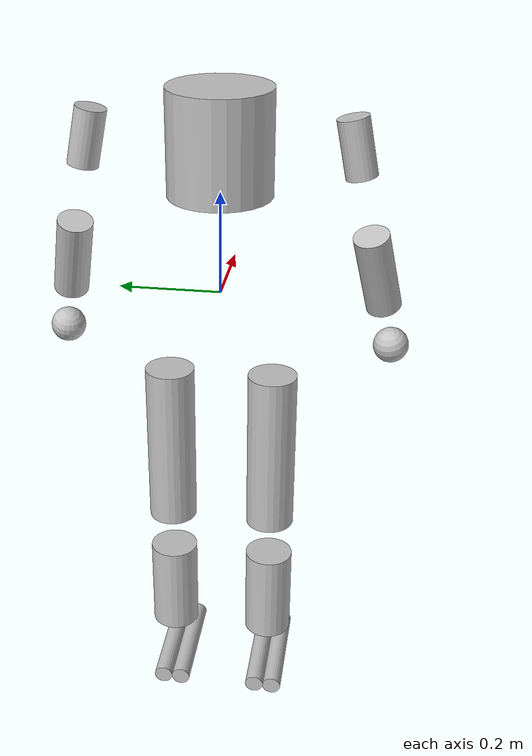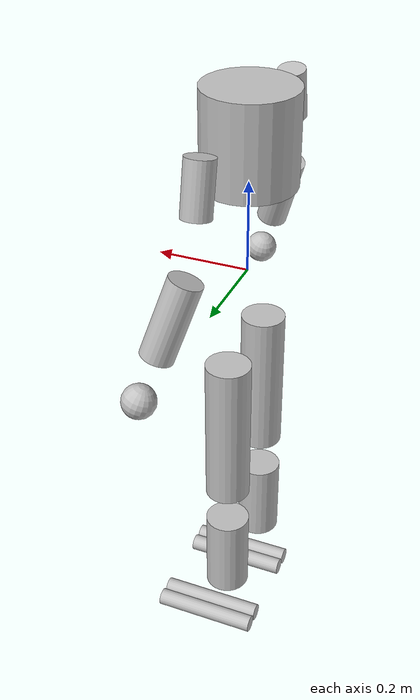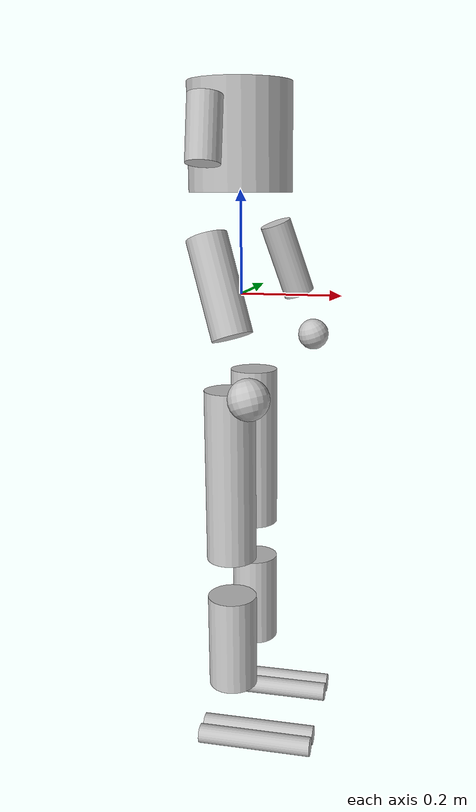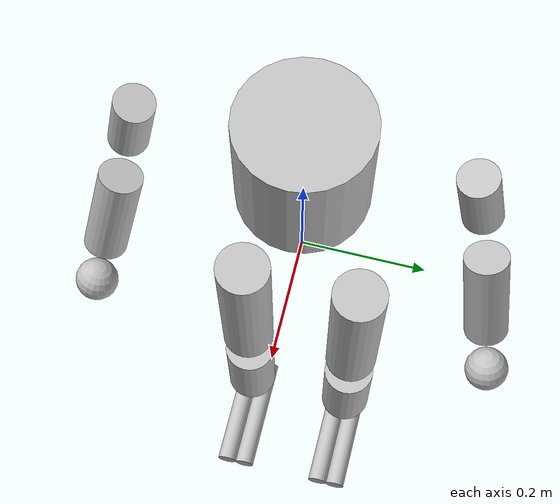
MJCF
<?xml version='1.0' encoding='utf-8'?>
<mujoco model="GR1T2Simple">
  <compiler angle="radian" boundmass="1e-06" boundinertia="1e-08" meshdir=".." />
  <worldbody>
    <body name="base">
      <joint type="free" />
      <geom size="0.1 0.1" pos="0 0 0.2945" type="cylinder" rgba="0.75294 0.75294 0.75294 1" />
      <geom size="0.03 0.055" pos="0 0.24822 0.294998" quat="0.995007 0.099801 0 0" type="cylinder" rgba="0.75294 0.75294 0.75294 1" />
      <geom size="0.035 0.085" pos="0.0356099 0.300163 0.0464975" quat="0.983835 0.0986803 -0.148692 -0.0149141" type="cylinder" rgba="0.75294 0.75294 0.75294 1" />
      <geom size="0.036" pos="0.0920778 0.337728 -0.132146" quat="0.983835 0.0986803 -0.148692 -0.0149141" rgba="0.75294 0.75294 0.75294 1" />
      <geom size="0.03 0.055" pos="0 -0.247912 0.294668" quat="0.995001 -0.0998644 0 0" type="cylinder" rgba="0.75294 0.75294 0.75294 1" />
      <geom size="0.035 0.085" pos="0.0356102 -0.298349 0.0460846" quat="0.983828 -0.098743 -0.148691 0.0149236" type="cylinder" rgba="0.75294 0.75294 0.75294 1" />
      <geom size="0.036" pos="0.0920795 -0.334627 -0.132824" quat="0.983828 -0.098743 -0.148691 0.0149236" rgba="0.75294 0.75294 0.75294 1" />
      <body name="l_thigh_roll" pos="-0.048 0.105 -0.0575">
        <inertial pos="0.042108 5.3388e-05 0.0025561" quat="0.000951199 0.75733 0.00226652 0.653028" mass="1.24084" diaginertia="0.00139721 0.00109616 0.000971712" />
        <joint name="l_hip_roll" pos="0 0 0" axis="1 0 0" range="-0.09 0.79" actuatorfrcrange="-48 48" />
        <body name="l_thigh_yaw" pos="0.048 0 -0.0305">
          <inertial pos="-0.00036975 0.048008 -0.10263" quat="0.703435 0.0400874 -0.0739438 0.705766" mass="3.9947" diaginertia="0.0141906 0.00974878 0.00712104" />
          <joint name="l_hip_yaw" pos="0 0 0" axis="0 0 1" range="-0.7 0.7" actuatorfrcrange="-66 66" />
          <body name="l_thigh_pitch" pos="0 0 -0.11">
            <inertial pos="0.0023293 -0.018978 -0.09346" quat="0.709706 0.0401023 -0.0585618 0.700914" mass="6.1575" diaginertia="0.0860379 0.0814364 0.0141615" />
            <joint name="l_hip_pitch" pos="0 0 0" axis="0 1 0" range="-1.75 0.7" actuatorfrcrange="-225 225" />
            <geom size="0.05 0.175" pos="0 0 -0.15" type="cylinder" rgba="0.75294 0.75294 0.75294 1" />
            <body name="l_shank_pitch" pos="0 0 -0.359995">
              <inertial pos="0.0026504 0.0058504 -0.12267" quat="0.668844 0.0129955 -0.000303131 0.743289" mass="2.4196" diaginertia="0.0211876 0.0209532 0.00159024" />
              <joint name="l_knee_pitch" pos="0 0 0" axis="0 1 0" range="-0.09 1.92" actuatorfrcrange="-225 225" />
              <geom size="0.05 0.1" pos="0 0 -0.15" type="cylinder" rgba="0.75294 0.75294 0.75294 1" />
              <body name="l_foot_pitch" pos="0 0 -0.34">
                <inertial pos="0.0323551 0.000248254 -0.0339204" quat="0.000783508 0.734635 0.000906743 0.678461" mass="0.640958" diaginertia="0.00289138 0.00270716 0.000450323" />
                <joint name="l_ankle_pitch" pos="0 0 0" axis="0 1 0" range="-1.05 0.52" actuatorfrcrange="-15 15" />
                <geom name="l_foot_1" size="0.02 0.12" pos="0.05 0.02 -0.035" quat="0.707105 0 0.707108 0" type="cylinder" rgba="0.75294 0.75294 0.75294 1" />
                <geom name="l_foot_2" size="0.02 0.12" pos="0.05 -0.02 -0.035" quat="0.707105 0 0.707108 0" type="cylinder" rgba="0.75294 0.75294 0.75294 1" />
              </body>
            </body>
          </body>
        </body>
      </body>
      <body name="r_thigh_roll" pos="-0.048 -0.105 -0.0575">
        <inertial pos="0.042109 -5.244e-05 0.0025563" quat="-0.000958227 0.757316 -0.00228287 0.653044" mass="1.2408" diaginertia="0.00139725 0.00109626 0.000971768" />
        <joint name="r_hip_roll" pos="0 0 0" axis="1 0 0" range="-0.79 0.09" actuatorfrcrange="-48 48" />
        <body name="r_thigh_yaw" pos="0.048 0 -0.0305">
          <inertial pos="-0.000369 -0.048008 -0.10263" quat="0.705764 -0.0739587 0.0400772 0.703435" mass="3.9947" diaginertia="0.0141904 0.00974868 0.00712096" />
          <joint name="r_hip_yaw" pos="0 0 0" axis="0 0 1" range="-0.7 0.7" actuatorfrcrange="-66 66" />
          <body name="r_thigh_pitch" pos="0 0 -0.11">
            <inertial pos="0.0023609 0.019072 -0.093254" quat="0.70026 -0.0586384 0.040433 0.710326" mass="6.1575" diaginertia="0.0861752 0.0815583 0.0142018" />
            <joint name="r_hip_pitch" pos="0 0 0" axis="0 1 0" range="-1.75 0.7" actuatorfrcrange="-225 225" />
            <geom size="0.05 0.175" pos="0 0 -0.15" type="cylinder" rgba="0.75294 0.75294 0.75294 1" />
            <body name="r_shank_pitch" pos="0 0 -0.359995">
              <inertial pos="0.0026636 -0.0058849 -0.12251" quat="0.742943 -0.000565827 0.013187 0.669224" mass="2.4196" diaginertia="0.0211282 0.0208909 0.00158776" />
              <joint name="r_knee_pitch" pos="0 0 0" axis="0 1 0" range="-0.09 1.92" actuatorfrcrange="-225 225" />
              <geom size="0.05 0.1" pos="0 0 -0.15" type="cylinder" rgba="0.75294 0.75294 0.75294 1" />
              <body name="r_foot_pitch" pos="0 0 -0.34">
                <inertial pos="0.032356 -0.000248153 -0.0339213" quat="-0.000795754 0.734638 -0.000906933 0.678458" mass="0.640957" diaginertia="0.00289128 0.00270709 0.000450294" />
                <joint name="r_ankle_pitch" pos="0 0 0" axis="0 1 0" range="-1.05 0.52" actuatorfrcrange="-15 15" />
                <geom name="r_foot_1" size="0.02 0.12" pos="0.05 0.02 -0.035" quat="0.707105 0 0.707108 0" type="cylinder" rgba="0.75294 0.75294 0.75294 1" />
                <geom name="r_foot_2" size="0.02 0.12" pos="0.05 -0.02 -0.035" quat="0.707105 0 0.707108 0" type="cylinder" rgba="0.75294 0.75294 0.75294 1" />
              </body>
            </body>
          </body>
        </body>
      </body>
    </body>
  </worldbody>
</mujoco>
